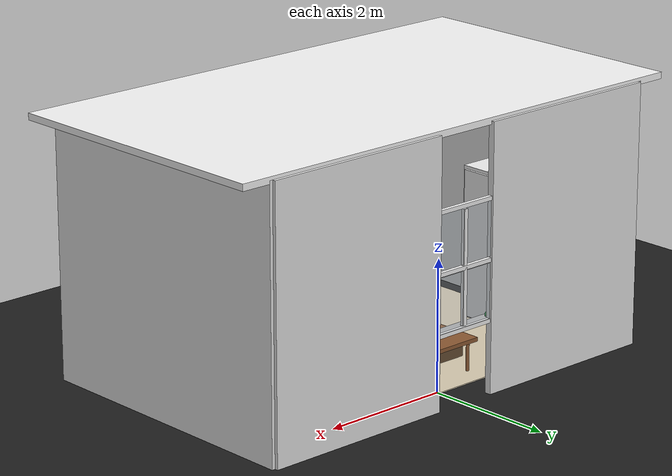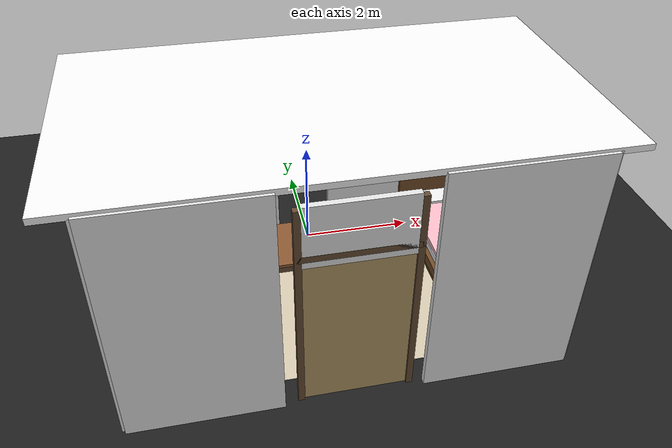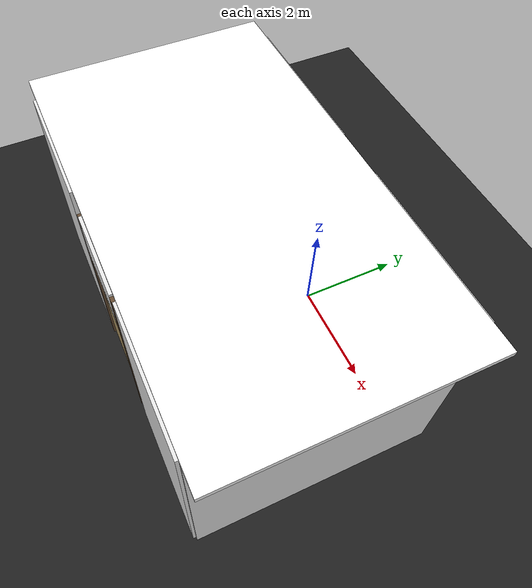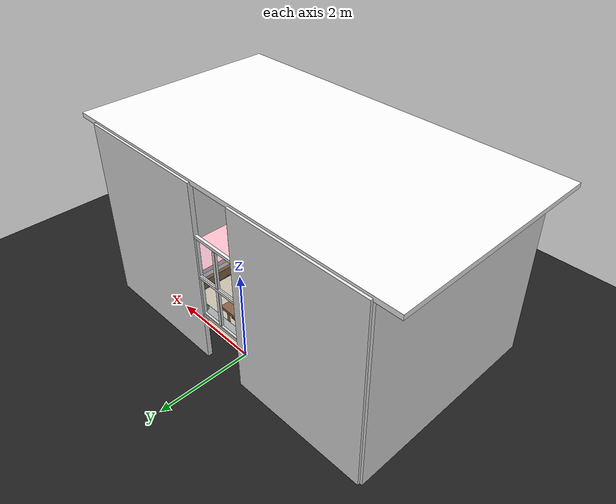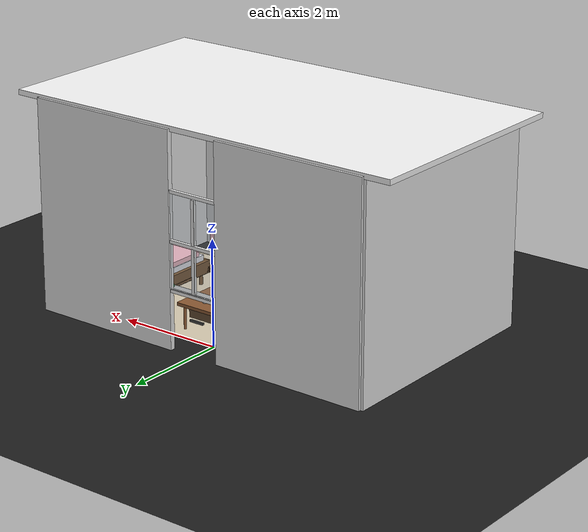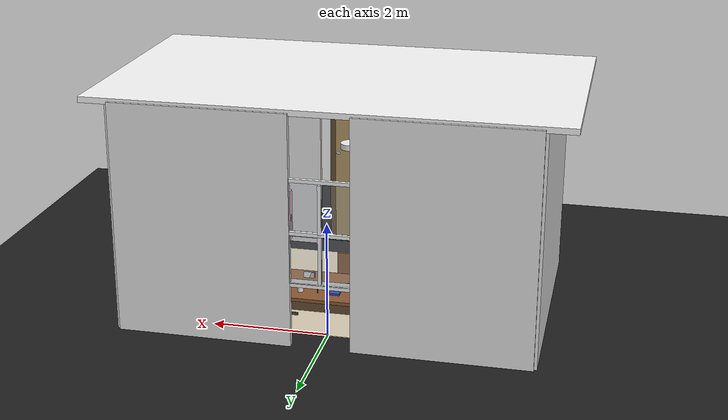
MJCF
<?xml version="1.0" encoding="UTF-8"?>
<mujoco model="modern_window_room_with_adjustable_lamp">
   <compiler angle="degree" coordinate="local" inertiafromgeom="true" />
   <option timestep="0.005" gravity="0 0 -9.81" />
   <visual>
      <global offwidth="800" offheight="800" />
      <map force="0.05" zfar="30" />
      <rgba haze="0.25 0.35 0.45 1" />
   </visual>
   <asset>
      <texture name="grid" type="2d" builtin="checker" width="512" height="512" rgb1="0.12 0.12 0.12" rgb2="0.2 0.2 0.2" />
      <material name="grid" texture="grid" texrepeat="1 1" texuniform="true" reflectance="0.1" />
      <material name="brown" rgba="0.55 0.35 0.2 1" />
      <material name="black" rgba="0.05 0.05 0.05 1" />
      <material name="book1" rgba="0.2 0.3 0.7 1" />
      <material name="book2" rgba="0.7 0.2 0.3 1" />
      <material name="bed_frame" rgba="0.45 0.3 0.15 1" />
      <material name="mattress" rgba="0.95 0.95 0.98 1" />
      <material name="white" rgba="0.95 0.95 0.95 1" />
      <material name="pink" rgba="1.0 0.75 0.8 1" />
      <material name="beige" rgba="0.85 0.8 0.7 1" />
      <material name="dark_gray" rgba="0.3 0.3 0.3 1" />
      <material name="green" rgba="0.2 0.6 0.3 1" />
      <material name="gold" rgba="0.85 0.75 0.4 1" />
      <material name="wall" rgba="0.95 0.95 0.92 1" reflectance="0.1" />
      <material name="ceiling" rgba="0.98 0.98 0.98 1" reflectance="0.1" />
      <material name="glass" rgba="0.85 0.92 0.98 0.05" reflectance="0.05" />
      <material name="window_frame" rgba="0.95 0.95 0.95 1" />
      <material name="curtain" rgba="0.9 0.88 0.85 0.7" />
      <material name="silver" rgba="0.75 0.75 0.75 1" />
      <material name="wood_dark" rgba="0.4 0.3 0.2 1" />
      <material name="wood_light" rgba="0.7 0.6 0.4 1" />
      <material name="metal" rgba="0.8 0.8 0.85 1" />
      <material name="window_sill_gray" rgba="0.7 0.7 0.7 1" />
      <material name="light_gray_wall" rgba="0.9 0.9 0.9 1" />
      <material name="dark_floor" rgba="0.12 0.12 0.12 1" />
      <material name="lamp_base" rgba="0.1 0.1 0.1 1" />
      <material name="lamp_pole" rgba="0.15 0.15 0.15 1" />
      <material name="lamp_shade" rgba="0.8 0.8 0.8 0.7" />
      <material name="bright_indicator" rgba="1.0 0.8 0.2 1" />
   </asset>
   <worldbody>
      <!-- 地面 - 使用更暗的材质 -->
      <geom name="floor" pos="0 0 0" size="0 0 0.05" type="plane" material="dark_floor" />
      <!-- 后墙 - 改为大窗户墙 -->
      <geom name="back_wall_left" type="box" size="1.5 0.05 2.0" pos="-2.0 0.5 2.0" material="light_gray_wall" />
      <geom name="back_wall_right" type="box" size="1.5 0.05 2.0" pos="2.0 0.5 2.0" material="light_gray_wall" />
      <!-- 前墙 - 修改为带门的结构 -->
      <geom name="front_wall_left" type="box" size="1.2 0.05 2.0" pos="-2.3 -4.0 2.0" material="light_gray_wall" />
      <geom name="front_wall_right" type="box" size="1.2 0.05 2.0" pos="2.3 -4.0 2.0" material="light_gray_wall" />
      <geom name="front_wall_top" type="box" size="0.8 0.05 0.5" pos="0 -4.0 3.25" material="light_gray_wall" />
      <!-- 左墙 -->
      <geom name="left_wall" type="box" size="0.05 2.25 2.0" pos="-3.5 -1.75 2.0" material="light_gray_wall" />
      <!-- 右墙 -->
      <geom name="right_wall" type="box" size="0.05 2.25 2.0" pos="3.5 -1.75 2.0" material="light_gray_wall" />
      <!-- 天花板 -->
      <geom name="ceiling" type="box" size="4.0 2.25 0.05" pos="0 -1.75 4.0" material="ceiling" />
      <!-- 在书桌前墙位置创建大窗户 -->
      <body name="main_window" pos="0 0.5 2.0">
         <geom name="main_window_frame_top" type="box" size="2.0 0.03 0.03" pos="0 0 0.9" material="window_frame" />
         <geom name="main_window_frame_bottom" type="box" size="2.0 0.03 0.03" pos="0 0 -0.9" material="window_frame" />
         <geom name="main_window_frame_left" type="box" size="0.03 0.03 0.85" pos="-1.97 0 0" material="window_frame" />
         <geom name="main_window_frame_right" type="box" size="0.03 0.03 0.85" pos="1.97 0 0" material="window_frame" />
         <geom name="main_window_frame_middle_h" type="box" size="2.0 0.03 0.03" pos="0 0 0" material="window_frame" />
         <geom name="main_window_frame_middle_v" type="box" size="0.03 0.03 0.85" pos="0 0 0" material="window_frame" />
         <geom name="main_window_glass_tl" type="box" size="0.97 0.005 0.42" pos="-0.985 0.01 0.47" material="glass" />
         <geom name="main_window_glass_tr" type="box" size="0.97 0.005 0.42" pos="0.985 0.01 0.47" material="glass" />
         <geom name="main_window_glass_bl" type="box" size="0.97 0.005 0.42" pos="-0.985 0.01 -0.47" material="glass" />
         <geom name="main_window_glass_br" type="box" size="0.97 0.005 0.42" pos="0.985 0.01 -0.47" material="glass" />
         <geom name="main_window_sill" type="box" size="2.0 0.1 0.03" pos="0 -0.07 -0.9" material="window_sill_gray" />
         <geom name="sill_plant_left" type="sphere" size="0.08" pos="-0.6 -0.07 -0.87" material="green" />
         <geom name="sill_plant_right" type="sphere" size="0.08" pos="0.6 -0.07 -0.87" material="green" />
      </body>
      <!-- 前墙门 -->
      <body name="front_door" pos="0 -4.0 1.0">
         <!-- 门框 -->
         <geom name="door_frame_top" type="box" size="0.9 0.05 0.05" pos="0 0 1.9" material="wood_dark" />
         <geom name="door_frame_left" type="box" size="0.05 0.05 1.8" pos="-0.85 0 0.9" material="wood_dark" />
         <geom name="door_frame_right" type="box" size="0.05 0.05 1.8" pos="0.85 0 0.9" material="wood_dark" />
         <!-- 门板 -->
         <geom name="door" type="box" size="0.8 0.03 1.8" pos="0 0.02 0.9" material="wood_light" />
         <!-- 门把手 -->
         <geom name="door_handle" type="cylinder" size="0.02 0.04" pos="0.75 0.04 0.9" euler="0 90 0" material="metal" />
      </body>
      <!-- 书桌靠窗墙放置 -->
      <body name="desk" pos="0 -0.8 0.5">
         <geom name="desk_top" type="box" size="1.0 0.6 0.03" pos="0 0 0" material="brown" />
         <geom name="leg1" type="cylinder" size="0.025 0.25" pos="0.9 0.5 -0.28" material="brown" />
         <geom name="leg2" type="cylinder" size="0.025 0.25" pos="0.9 -0.5 -0.28" material="brown" />
         <geom name="leg3" type="cylinder" size="0.025 0.25" pos="-0.9 0.5 -0.28" material="brown" />
         <geom name="leg4" type="cylinder" size="0.025 0.25" pos="-0.9 -0.5 -0.28" material="brown" />
         <geom name="desk_drawer" type="box" size="0.8 0.5 0.08" pos="0 0 -0.15" material="wood_dark" />
      </body>
      <!-- 衣柜移到书桌左边并靠墙摆放 -->
      <body name="wardrobe" pos="-2.8 -0.8 1.2" euler="0 0 0">
         <geom name="wardrobe_body" type="box" size="0.3 1.2 1.2" pos="0 0 0" material="white" />
         <geom name="wardrobe_door_left" type="box" size="0.32 0.55 1.15" pos="0.02 -0.6 0" material="white" />
         <geom name="wardrobe_door_right" type="box" size="0.32 0.55 1.15" pos="0.02 0.6 0" material="white" />
         <geom name="handle_left" type="cylinder" size="0.018 0.06" pos="0.35 -0.3 0" euler="0 90 0" material="black" />
         <geom name="handle_right" type="cylinder" size="0.018 0.06" pos="0.35 0.3 0" euler="0 90 0" material="black" />
      </body>
      <!-- 可调节亮度台灯 -->
      <body name="adjustable_lamp" pos="0.3 -0.5 0.3">
         <!-- 灯座 -->
         <geom name="lamp_base" type="cylinder" size="0.08 0.02" pos="0 0 0" material="lamp_base" />
         <!-- 可调节灯柱 -->
         <body name="lamp_pole" pos="0 0 0.05">
            <joint name="height_joint" type="slide" axis="0 0 1" range="0 0.3" />
            <geom name="pole_geom" type="cylinder" size="0.01 0.2" pos="0 0 0.2" material="lamp_pole" />
            <!-- 灯头 -->
            <body name="lamp_head" pos="0 0 0.4">
               <geom name="shade" type="capsule" size="0.06 0.1" pos="0 0 0" euler="90 0 0" material="lamp_shade" />
               <!-- 可调节光源 -->
               <light name="adjustable_light" mode="fixed" pos="0 0 0" dir="0 0 -1" diffuse="0.5 0.45 0.3" specular="0.4 0.35 0.2" attenuation="0.5 0 0" cutoff="45" exponent="2" />
            </body>
         </body>
      </body>
      <!-- 书本和文具 -->
      <body name="book1" pos="0 -0.6 0.545">
         <geom name="book1_geom" type="box" size="0.09 0.15 0.018" material="book1" />
      </body>
      <body name="pen" pos="-0.2 -1.0 0.528">
         <geom name="pen_body" type="capsule" size="0.005 0.08" euler="0 90 25" material="black" />
      </body>
      <body name="pen_holder" pos="0.6 -0.5 0.52">
         <geom name="pen_holder_body" type="cylinder" size="0.05 0.1" material="white" />
      </body>
      <body name="desk_photo_frame" pos="0.6 -1.1 0.52">
         <geom name="photo_frame_stand" type="box" size="0.1 0.012 0.12" material="white" />
         <geom name="photo_frame_border" type="box" size="0.095 0.006 0.115" pos="0 0.006 0" material="silver" />
      </body>
      <!-- 椅子调整位置 -->
      <body name="chair" pos="0 -1.6 0.25">
         <geom name="chair_seat" type="box" size="0.25 0.25 0.025" pos="0 0 0" material="brown" />
         <geom name="chair_back" type="box" size="0.25 0.025 0.25" pos="0 -0.22 0.25" material="brown" />
         <geom name="chair_leg1" type="cylinder" size="0.018 0.15" pos="0.2 0.2 -0.15" material="brown" />
         <geom name="chair_leg2" type="cylinder" size="0.018 0.15" pos="0.2 -0.2 -0.15" material="brown" />
         <geom name="chair_leg3" type="cylinder" size="0.018 0.15" pos="-0.2 0.2 -0.15" material="brown" />
         <geom name="chair_leg4" type="cylinder" size="0.018 0.15" pos="-0.2 -0.2 -0.15" material="brown" />
      </body>
      <!-- 调整原窗户位置和大小 -->
      <body name="side_window" pos="-1.8 0.5 1.8">
         <geom name="side_window_frame_top" type="box" size="0.8 0.03 0.03" pos="0 0 0.6" material="window_frame" />
         <geom name="side_window_frame_bottom" type="box" size="0.8 0.03 0.03" pos="0 0 -0.6" material="window_frame" />
         <geom name="side_window_frame_left" type="box" size="0.03 0.03 0.57" pos="-0.77 0 0" material="window_frame" />
         <geom name="side_window_frame_right" type="box" size="0.03 0.03 0.57" pos="0.77 0 0" material="window_frame" />
         <geom name="side_window_glass" type="box" size="0.74 0.005 0.54" pos="0 0.01 0" material="glass" />
         <geom name="side_window_sill" type="box" size="0.8 0.08 0.02" pos="0 -0.05 -0.6" material="window_sill_gray" />
      </body>
      <!-- 天花板灯 - 降低亮度 -->
      <body name="ceiling_light" pos="0 -1.75 2.8">
         <geom name="light_base" type="cylinder" size="0.18 0.05" material="white" />
         <!-- 降低天花板灯的强度和衰减 -->
         <light name="ceiling_lamp" mode="fixed" pos="0 0 -0.1" dir="0 0 -1" directional="false" diffuse="0.7 0.7 0.6" specular="0.3 0.3 0.3" attenuation="0.5 0 0" cutoff="120" />
      </body>
      <!-- 床位置调整 -->
      <body name="bed" pos="2.5 -1.0 0.3">
         <geom name="bed_base" type="box" size="0.6 1.2 0.03" pos="0 0 0" material="bed_frame" />
         <geom name="bed_frame_left" type="box" size="0.06 1.2 0.12" pos="-0.54 0 0.09" material="bed_frame" />
         <geom name="bed_frame_right" type="box" size="0.06 1.2 0.12" pos="0.54 0 0.09" material="bed_frame" />
         <geom name="bed_frame_head" type="box" size="0.6 0.06 0.12" pos="0 1.14 0.09" material="bed_frame" />
         <geom name="bed_frame_foot" type="box" size="0.6 0.06 0.12" pos="0 -1.14 0.09" material="bed_frame" />
         <geom name="mattress" type="box" size="0.52 1.1 0.12" pos="0 0 0.2" material="mattress" />
         <geom name="headboard" type="box" size="0.6 0.04 0.4" pos="0 1.18 0.55" material="bed_frame" />
         <geom name="quilt" type="box" size="0.5 0.9 0.06" pos="0 -0.1 0.35" material="pink" />
         <geom name="pillow" type="box" size="0.35 0.2 0.1" pos="0 0.8 0.36" material="white" />
         <geom name="bed_leg1" type="cylinder" size="0.035 0.15" pos="0.45 1.1 -0.17" material="bed_frame" />
         <geom name="bed_leg2" type="cylinder" size="0.035 0.15" pos="0.45 -1.1 -0.17" material="bed_frame" />
         <geom name="bed_leg3" type="cylinder" size="0.035 0.15" pos="-0.45 1.1 -0.17" material="bed_frame" />
         <geom name="bed_leg4" type="cylinder" size="0.035 0.15" pos="-0.45 -1.1 -0.17" material="bed_frame" />
      </body>
      <!-- 地毯 -->
      <body name="rug" pos="0 -1.75 0.01">
         <geom name="rug_geom" type="box" size="3.2 1.8 0.008" material="beige" />
      </body>
      <!-- 墙上装饰画框 -->
      <body name="wall_frame_left" pos="1.5 0.45 1.5">
         <geom name="frame_border_left" type="box" size="0.4 0.012 0.35" material="gold" />
         <geom name="frame_picture_left" type="box" size="0.37 0.008 0.32" pos="0 -0.008 0" material="beige" />
      </body>
      <!-- 休闲椅位置调整 -->
      <body name="armchair" pos="2.0 -3.2 0.4">
         <geom name="armchair_seat" type="box" size="0.4 0.4 0.1" pos="0 0 0" material="pink" />
         <geom name="armchair_back" type="box" size="0.4 0.1 0.5" pos="0 -0.35 0.3" material="pink" />
         <geom name="armchair_arm_left" type="box" size="0.05 0.4 0.3" pos="-0.35 0 0.2" material="pink" />
         <geom name="armchair_arm_right" type="box" size="0.05 0.4 0.3" pos="0.35 0 0.2" material="pink" />
         <geom name="armchair_leg1" type="cylinder" size="0.02 0.15" pos="0.3 0.3 -0.25" material="silver" />
         <geom name="armchair_leg2" type="cylinder" size="0.02 0.15" pos="0.3 -0.3 -0.25" material="silver" />
         <geom name="armchair_leg3" type="cylinder" size="0.02 0.15" pos="-0.3 0.3 -0.25" material="silver" />
         <geom name="armchair_leg4" type="cylinder" size="0.02 0.15" pos="-0.3 -0.3 -0.25" material="silver" />
      </body>
      <!-- 亮度指示器 -->
      <body name="brightness_indicator" pos="0.8 -0.5 0.1">
         <geom name="indicator_base" type="box" size="0.15 0.02 0.02" pos="0 0 0" material="dark_gray" />
         <geom name="indicator_level" type="box" size="0.01 0.015 0.015" pos="-0.12 0 0" material="bright_indicator" />
      </body>
      <!-- 环境光照 - 降低亮度 -->
      <light directional="true" pos="0 3 6" dir="0 -0.5 -1" diffuse="0.3 0.3 0.3" specular="0.1 0.1 0.1" />
      <light directional="true" pos="-3 3 6" dir="0.5 -0.5 -1" diffuse="0.2 0.25 0.3" specular="0.05 0.05 0.05" />
      <light directional="true" pos="0 0.8 3" dir="0 -0.3 -1" diffuse="0.2 0.25 0.3" />
   </worldbody>
   <actuator>
      <!-- 亮度控制执行器（通过灯柱高度控制亮度） -->
      <general name="brightness_control" joint="height_joint" ctrllimited="true" ctrlrange="0 0.3" gainprm="100" biasprm="0 -100 0" />
   </actuator>
   <sensor>
      <!-- 亮度传感器 -->
      <actuatorpos name="brightness_sensor" actuator="brightness_control" />
   </sensor>
</mujoco>
